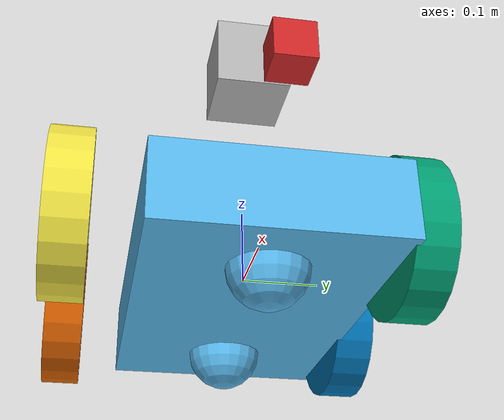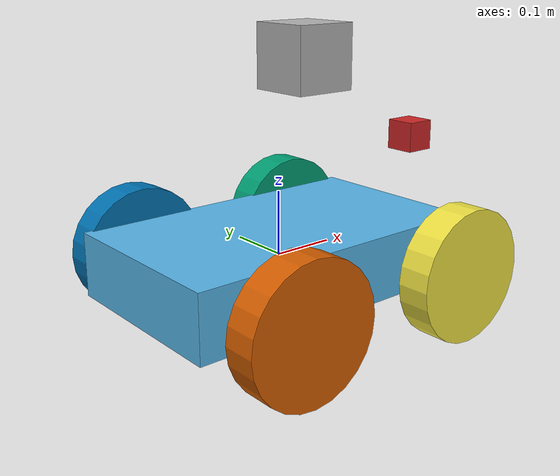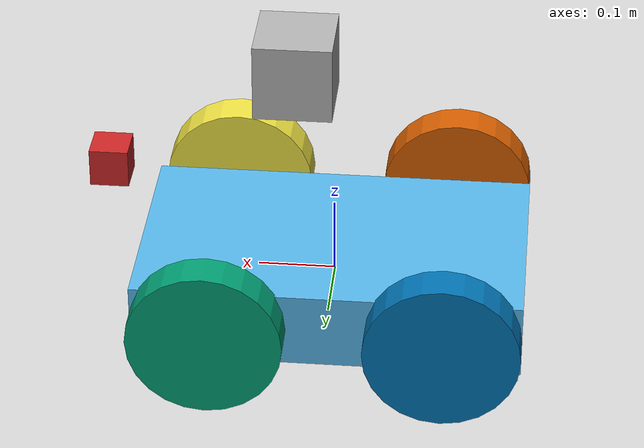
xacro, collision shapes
<?xml version='1.0'?>

<robot name="my_robot" xmlns:xacro="http://www.ros.org/wiki/xacro">
  <!--gazebo plugins-->
  <xacro:include filename="$(find my_robot)/urdf/my_robot.gazebo" />

  <link name="robot_footprint"></link>

  <!--joints-->
  <joint name="robot_footprint_joint" type="fixed">
    <origin xyz="0 0 0" rpy="0 0 0" />
    <parent link="robot_footprint"/>
    <child link="chassis" />
  </joint>

  <joint type="continuous" name="left_wheel_hinge">
    <origin xyz="0.15 0.17 0" rpy="0 0 0"/>
    <child link="left_wheel"/>
    <parent link="chassis"/>
    <axis xyz="0 1 0" rpy="0 0 0"/>
    <limit effort="10000" velocity="1000"/>
    <dynamics damping="0.0" friction="0.0"/>
  </joint>

  <joint type="continuous" name="right_wheel_hinge">
    <origin xyz="0.15 -0.23 0" rpy="0 0 0"/>
    <child link="right_wheel"/>
    <parent link="chassis"/>
    <axis xyz="0 1 0" rpy="0 0 0"/>
    <limit effort="10000" velocity="1000"/>
    <dynamics damping="0.0" friction="0.0"/>
  </joint>

  <joint type="continuous" name="left_rear_wheel_hinge">
    <origin xyz="-0.15 0.17 0" rpy="0 0 0"/>
    <child link="left_rear_wheel"/>
    <parent link="chassis"/>
    <axis xyz="0 1 0" rpy="0 0 0"/>
    <limit effort="10000" velocity="1000"/>
    <dynamics damping="0.0" friction="0.0"/>
  </joint>

  <joint type="continuous" name="right_rear_wheel_hinge">
    <origin xyz="-0.15 -0.23 0" rpy="0 0 0"/>
    <child link="right_rear_wheel"/>
    <parent link="chassis"/>
    <axis xyz="0 1 0" rpy="0 0 0"/>
    <limit effort="10000" velocity="1000"/>
    <dynamics damping="0.0" friction="0.0"/>
  </joint>

  <joint type="fixed" name="camera_joint">
    <origin xyz="0.29 0 0.15" rpy="0 0 0"/>
    <child link="camera"/>
    <parent link="chassis"/>
    <axis xyz="0 1 0" rpy="0 0 0"/>
  </joint>

  <joint type="fixed" name="hokuyo_joint">
    <origin xyz="0.05 0 0.3" rpy="0 0 0"/>
    <child link="hokuyo"/>
    <parent link="chassis"/>
    <axis xyz="0 1 0" rpy="0 0 0"/>
  </joint>

  <!--chassis-->
  <link name='chassis'>
    <pose>0 0 0.1 0 0 0</pose>

    <inertial>
      <mass value="15.0"/>
      <origin xyz="0.0 0 0" rpy=" 0 0 0"/>
      <inertia
          ixx="0.1" ixy="0" ixz="0"
          iyy="0.1" iyz="0"
          izz="0.1"
      />
    </inertial>

    <collision name='collision'>
      <origin xyz="0 0 0" rpy=" 0 0 0"/>
      <geometry>
        <box size=".5 .3 .1"/>
      </geometry>
    </collision>

    <visual name='chassis_visual'>
      <origin xyz="0 0 0" rpy=" 0 0 0"/>
      <geometry>
        <mesh filename = "package://my_robot/meshes/chassis.dae"/>
        <!--box size=".4 .2 .1"/-->
      </geometry>
    </visual>

    <!--rear caster wheels-->
    <collision name='back_caster_collision'>
      <origin xyz="-0.15 0 -0.05" rpy=" 0 0 0"/>
      <geometry>
        <sphere radius="0.0499"/>
      </geometry>
    </collision>

    <visual name='back_caster_visual'>
      <origin xyz="-0.15 0 -0.05" rpy=" 0 0 0"/>
      <geometry>
        <sphere radius="0.05"/>
      </geometry>
    </visual>

    <collision name='front_caster_collision'>
      <origin xyz="0.15 0 -0.05" rpy=" 0 0 0"/>
      <geometry>
        <sphere radius="0.0499"/>
      </geometry>
    </collision>

    <visual name='front_caster_visual'>
      <origin xyz="0.15 0 -0.05" rpy=" 0 0 0"/>
      <geometry>
        <sphere radius="0.05"/>
      </geometry>
    </visual>

  </link>

  <!--left front wheel-->
  <link name='left_wheel'>
    <inertial>
      <mass value="5.0"/>
      <origin xyz="0.0 0 0" rpy=" 0 1.5708 1.5707"/>
      <inertia
          ixx="0.1" ixy="0" ixz="0"
          iyy="0.1" iyz="0"
          izz="0.1"
      />
    </inertial>

    <collision name='collision'>
      <origin xyz="0.0 0 0" rpy=" 0 1.5708 1.5707"/>
      <geometry>
        <cylinder radius = ".1" length = ".05"/>
      </geometry>
    </collision>

    <visual name='left_wheel_visual'>
      <origin xyz="0.0 0 0" rpy=" 0 1.5708 1.5708"/>
      <geometry>
        <mesh filename = "package://my_robot/meshes/wheel.dae"/>
        <!--cylinder radius = ".1" length = ".08"/-->
      </geometry>
    </visual>
  </link>

  <!--right front wheel-->
  <link name='right_wheel'>
    <inertial>
      <mass value="5.0"/>
      <origin xyz="0 0 0" rpy=" 0 1.5708 1.5708"/>
      <inertia
          ixx="0.1" ixy="0" ixz="0"
          iyy="0.1" iyz="0"
          izz="0.1"
      />
    </inertial>

    <collision name='collision'>
      <origin xyz="0 0 0" rpy=" 0 1.5708 1.5708"/>
      <geometry>
        <cylinder radius = ".1" length = ".05"/>
      </geometry>
    </collision>

    <visual name='right_wheel_visual'>
      <origin xyz="0 0 0" rpy=" 0 1.5708 1.5708"/>
      <geometry>
        <mesh filename = "package://my_robot/meshes/wheel.dae"/>
        <!--cylinder radius = ".1" length = ".08"/-->
      </geometry>
    </visual>
  </link>

  <!--left rear wheel-->
  <link name='left_rear_wheel'>
    <inertial>
      <mass value="5.0"/>
      <origin xyz="0.0 0 0" rpy=" 0 1.5708 1.5707"/>
      <inertia
          ixx="0.1" ixy="0" ixz="0"
          iyy="0.1" iyz="0"
          izz="0.1"
      />
    </inertial>

    <collision name='collision'>
      <origin xyz="0.0 0 0" rpy=" 0 1.5708 1.5707"/>
      <geometry>
        <cylinder radius = ".1" length = ".05"/>
      </geometry>
    </collision>

    <visual name='left_rear_wheel_visual'>
      <origin xyz="0.0 0 0" rpy=" 0 1.5708 1.5708"/>
      <geometry>
        <mesh filename = "package://my_robot/meshes/wheel.dae"/>
        <!--cylinder radius = ".1" length = ".08"/-->
      </geometry>
    </visual>
  </link>

  <!--right rear wheel-->
  <link name='right_rear_wheel'>
    <inertial>
      <mass value="5.0"/>
      <origin xyz="0 0 0" rpy=" 0 1.5708 1.5708"/>
      <inertia
          ixx="0.1" ixy="0" ixz="0"
          iyy="0.1" iyz="0"
          izz="0.1"
      />
    </inertial>

    <collision name='collision'>
      <origin xyz="0 0 0" rpy=" 0 1.5708 1.5708"/>
      <geometry>
        <cylinder radius = ".1" length = ".05"/>
      </geometry>
    </collision>

    <visual name='right_rear_wheel_visual'>
      <origin xyz="0 0 0" rpy=" 0 1.5708 1.5708"/>
      <geometry>
        <mesh filename = "package://my_robot/meshes/wheel.dae"/>
        <!--cylinder radius = ".1" length = ".08"/-->
      </geometry>
    </visual>
  </link>

  <!--camera-->
  <link name='camera'>
    <pose>0 0 0 0 0 0</pose>
    <inertial>
      <mass value="0.1"/>
      <origin xyz="0 0 0" rpy=" 0 0 0"/>
      <inertia
          ixx="1e-6" ixy="0" ixz="0"
          iyy="1e-6" iyz="0"
          izz="1e-6"
      />
    </inertial>

    <collision name='collision'>
      <origin xyz="0 0 0" rpy=" 0 0 0"/>
      <geometry>
        <box size=".05 .05 .05"/>
      </geometry>
    </collision>

    <visual name='camera_visual'>
      <origin xyz="0 0 0" rpy=" 0 0 0"/>
      <geometry>
        <box size=".05 .05 .05"/>
      </geometry>
    </visual>

  </link>

  <!--hokuyo lidar-->
  <link name='hokuyo'>
    <inertial>
      <mass value="1e-5"/>
      <origin xyz="0 0 0" rpy=" 0 0 0"/>
      <inertia
          ixx="1e-6" ixy="0" ixz="0"
          iyy="1e-6" iyz="0"
          izz="1e-6"
      />
    </inertial>

    <collision name='collision'>
      <origin xyz="0 0 0" rpy=" 0 0 0"/>
      <geometry>
        <box size=".1 .1 .1"/>
      </geometry>
    </collision>

    <visual name='visual'>
      <origin xyz="0 0 0" rpy=" 0 0 0"/>
      <geometry>
        <mesh filename = "package://my_robot/meshes/hokuyo.dae"/>
      </geometry>
    </visual>

  </link>

  <!--camera-->
  <gazebo reference="camera">
    <material>Gazebo/Red</material>
  </gazebo>

</robot>
